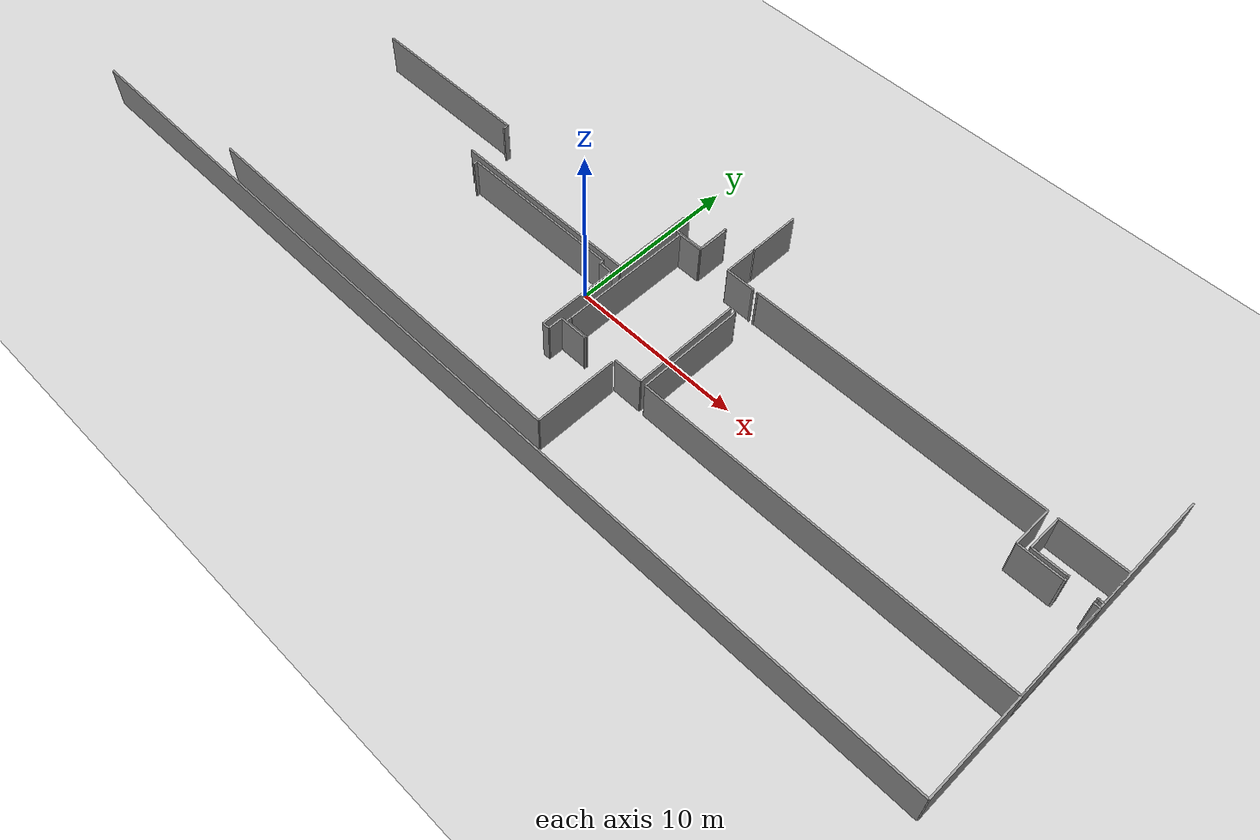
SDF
<sdf version="1.6">
 <world name="default">
  <model name="ground_plane">
   <static>1</static>
   <link name="link">
    <collision name="collision">
     <geometry><plane><normal>0 0 1</normal><size>100 100</size></plane></geometry>
     <surface><friction><ode><mu>100</mu><mu2>50</mu2></ode></friction></surface>
    </collision>
    <visual name="visual">
     <cast_shadows>0</cast_shadows>
     <geometry><plane><normal>0 0 1</normal><size>100 100</size></plane></geometry>
     <material>
      <script><uri>file://media/materials/scripts/gazebo.material</uri><name>Gazebo/Grey</name></script>
     </material>
    </visual>
   </link>
  </model>
  <model name="0510030942_A_40_1_101">
   <static>1</static>
   <link name="Wall_40">
    <collision name="Wall_40_Collision">
     <geometry><box><size>3.01192110213 0.1 2.5</size></box></geometry>
     <pose>1.50596055107 0 1.25 0 0 0</pose>
    </collision>
    <visual name="Wall_40_Visual">
     <pose>1.50596055107 0 1.25 0 0 0</pose>
     <geometry><box><size>3.01192110213 0.1 2.5</size></box></geometry>
     <material>
      <script><uri>file://media/materials/scripts/gazebo.material</uri><name>Gazebo/Grey</name></script>
      <ambient>1 1 1 1</ambient>
     </material>
    </visual>
    <pose>33.9616694627 -0.0 0 0 0 -1.57079632679</pose>
   </link>
   <link name="Wall_41">
    <collision name="Wall_41_Collision">
     <geometry><box><size>1.88500838798 0.1 2.5</size></box></geometry>
     <pose>0.942504193991 0 1.25 0 0 0</pose>
    </collision>
    <visual name="Wall_41_Visual">
     <pose>0.942504193991 0 1.25 0 0 0</pose>
     <geometry><box><size>1.88500838798 0.1 2.5</size></box></geometry>
     <material>
      <script><uri>file://media/materials/scripts/gazebo.material</uri><name>Gazebo/Grey</name></script>
      <ambient>1 1 1 1</ambient>
     </material>
    </visual>
    <pose>32.0152762951 -3.01192110213 0 0 0 -1.57079632679</pose>
   </link>
   <link name="Wall_42">
    <collision name="Wall_42_Collision">
     <geometry><box><size>1.67187738295 0.1 2.5</size></box></geometry>
     <pose>0.835938691475 0 1.25 0 0 0</pose>
    </collision>
    <visual name="Wall_42_Visual">
     <pose>0.835938691475 0 1.25 0 0 0</pose>
     <geometry><box><size>1.67187738295 0.1 2.5</size></box></geometry>
     <material>
      <script><uri>file://media/materials/scripts/gazebo.material</uri><name>Gazebo/Grey</name></script>
      <ambient>1 1 1 1</ambient>
     </material>
    </visual>
    <pose>32.0152762951 -4.89692949011 0 0 0 3.14159265359</pose>
   </link>
   <link name="Wall_43">
    <collision name="Wall_43_Collision">
     <geometry><box><size>0.869681256672 0.1 2.5</size></box></geometry>
     <pose>0.434840628336 0 1.25 0 0 0</pose>
    </collision>
    <visual name="Wall_43_Visual">
     <pose>0.434840628336 0 1.25 0 0 0</pose>
     <geometry><box><size>0.869681256672 0.1 2.5</size></box></geometry>
     <material>
      <script><uri>file://media/materials/scripts/gazebo.material</uri><name>Gazebo/Grey</name></script>
      <ambient>1 1 1 1</ambient>
     </material>
    </visual>
    <pose>30.3433989121 -4.89692949011 0 0 0 1.57079632679</pose>
   </link>
   <link name="Wall_44">
    <collision name="Wall_44_Collision">
     <geometry><box><size>0.362716689543 0.1 2.5</size></box></geometry>
     <pose>0.181358344771 0 1.25 0 0 0</pose>
    </collision>
    <visual name="Wall_44_Visual">
     <pose>0.181358344771 0 1.25 0 0 0</pose>
     <geometry><box><size>0.362716689543 0.1 2.5</size></box></geometry>
     <material>
      <script><uri>file://media/materials/scripts/gazebo.material</uri><name>Gazebo/Grey</name></script>
      <ambient>1 1 1 1</ambient>
     </material>
    </visual>
    <pose>30.3433989121 -4.02724823344 0 0 0 3.14159265359</pose>
   </link>
   <link name="Wall_45">
    <collision name="Wall_45_Collision">
     <geometry><box><size>4.62927660007 0.1 2.5</size></box></geometry>
     <pose>2.31463830004 0 1.25 0 0 0</pose>
    </collision>
    <visual name="Wall_45_Visual">
     <pose>2.31463830004 0 1.25 0 0 0</pose>
     <geometry><box><size>4.62927660007 0.1 2.5</size></box></geometry>
     <material>
      <script><uri>file://media/materials/scripts/gazebo.material</uri><name>Gazebo/Grey</name></script>
      <ambient>1 1 1 1</ambient>
     </material>
    </visual>
    <pose>29.9806822226 -4.02724823344 0 0 0 -1.57079632679</pose>
   </link>
   <link name="Wall_46">
    <collision name="Wall_46_Collision">
     <geometry><box><size>11.2853947435 0.1 2.5</size></box></geometry>
     <pose>5.64269737177 0 1.25 0 0 0</pose>
    </collision>
    <visual name="Wall_46_Visual">
     <pose>5.64269737177 0 1.25 0 0 0</pose>
     <geometry><box><size>11.2853947435 0.1 2.5</size></box></geometry>
     <material>
      <script><uri>file://media/materials/scripts/gazebo.material</uri><name>Gazebo/Grey</name></script>
      <ambient>1 1 1 1</ambient>
     </material>
    </visual>
    <pose>29.9806822226 -8.65652483351 0 0 0 3.14159265359</pose>
   </link>
   <link name="Wall_48">
    <collision name="Wall_48_Collision">
     <geometry><box><size>0.315947333638 0.1 2.5</size></box></geometry>
     <pose>0.157973666819 0 1.25 0 0 0</pose>
    </collision>
    <visual name="Wall_48_Visual">
     <pose>0.157973666819 0 1.25 0 0 0</pose>
     <geometry><box><size>0.315947333638 0.1 2.5</size></box></geometry>
     <material>
      <script><uri>file://media/materials/scripts/gazebo.material</uri><name>Gazebo/Grey</name></script>
      <ambient>1 1 1 1</ambient>
     </material>
    </visual>
    <pose>18.695287479 -6.34588988867 0 0 0 1.57079632679</pose>
   </link>
   <link name="Wall_49">
    <collision name="Wall_49_Collision">
     <geometry><box><size>9.84914789924 0.1 2.5</size></box></geometry>
     <pose>4.92457394962 0 1.25 0 0 0</pose>
    </collision>
    <visual name="Wall_49_Visual">
     <pose>4.92457394962 0 1.25 0 0 0</pose>
     <geometry><box><size>9.84914789924 0.1 2.5</size></box></geometry>
     <material>
      <script><uri>file://media/materials/scripts/gazebo.material</uri><name>Gazebo/Grey</name></script>
      <ambient>1 1 1 1</ambient>
     </material>
    </visual>
    <pose>18.695287479 -6.02994255503 0 0 0 3.14063777821</pose>
   </link>
   <link name="Wall_64">
    <collision name="Wall_64_Collision">
     <geometry><box><size>0.249351837731 0.1 2.5</size></box></geometry>
     <pose>0.124675918865 0 1.25 0 0 0</pose>
    </collision>
    <visual name="Wall_64_Visual">
     <pose>0.124675918865 0 1.25 0 0 0</pose>
     <geometry><box><size>0.249351837731 0.1 2.5</size></box></geometry>
     <material>
      <script><uri>file://media/materials/scripts/gazebo.material</uri><name>Gazebo/Grey</name></script>
      <ambient>1 1 1 1</ambient>
     </material>
    </visual>
    <pose>19.5475573179 -9.25194448681 0 0 0 1.57079632679</pose>
   </link>
   <link name="Wall_65">
    <collision name="Wall_65_Collision">
     <geometry><box><size>9.60195211225 0.1 2.5</size></box></geometry>
     <pose>4.80097605612 0 1.25 0 0 0</pose>
    </collision>
    <visual name="Wall_65_Visual">
     <pose>4.80097605612 0 1.25 0 0 0</pose>
     <geometry><box><size>9.60195211225 0.1 2.5</size></box></geometry>
     <material>
      <script><uri>file://media/materials/scripts/gazebo.material</uri><name>Gazebo/Grey</name></script>
      <ambient>1 1 1 1</ambient>
     </material>
    </visual>
    <pose>19.5475573179 -9.00259264908 0 0 0 0.0</pose>
   </link>
   <link name="Wall_66">
    <collision name="Wall_66_Collision">
     <geometry><box><size>0.233211326318 0.1 2.5</size></box></geometry>
     <pose>0.116605663159 0 1.25 0 0 0</pose>
    </collision>
    <visual name="Wall_66_Visual">
     <pose>0.116605663159 0 1.25 0 0 0</pose>
     <geometry><box><size>0.233211326318 0.1 2.5</size></box></geometry>
     <material>
      <script><uri>file://media/materials/scripts/gazebo.material</uri><name>Gazebo/Grey</name></script>
      <ambient>1 1 1 1</ambient>
     </material>
    </visual>
    <pose>29.1495094301 -9.00259264908 0 0 0 -1.57079632679</pose>
   </link>
   <link name="Wall_67">
    <collision name="Wall_67_Collision">
     <geometry><box><size>0.794824869097 0.1 2.5</size></box></geometry>
     <pose>0.397412434548 0 1.25 0 0 0</pose>
    </collision>
    <visual name="Wall_67_Visual">
     <pose>0.397412434548 0 1.25 0 0 0</pose>
     <geometry><box><size>0.794824869097 0.1 2.5</size></box></geometry>
     <material>
      <script><uri>file://media/materials/scripts/gazebo.material</uri><name>Gazebo/Grey</name></script>
      <ambient>1 1 1 1</ambient>
     </material>
    </visual>
    <pose>29.1495094301 -9.2358039754 0 0 0 0.0</pose>
   </link>
   <link name="Wall_68">
    <collision name="Wall_68_Collision">
     <geometry><box><size>4.65316964059 0.1 2.5</size></box></geometry>
     <pose>2.32658482029 0 1.25 0 0 0</pose>
    </collision>
    <visual name="Wall_68_Visual">
     <pose>2.32658482029 0 1.25 0 0 0</pose>
     <geometry><box><size>4.65316964059 0.1 2.5</size></box></geometry>
     <material>
      <script><uri>file://media/materials/scripts/gazebo.material</uri><name>Gazebo/Grey</name></script>
      <ambient>1 1 1 1</ambient>
     </material>
    </visual>
    <pose>29.9443342992 -9.2358039754 0 0 0 -1.57079632679</pose>
   </link>
   <link name="Wall_69">
    <collision name="Wall_69_Collision">
     <geometry><box><size>0.404656601088 0.1 2.5</size></box></geometry>
     <pose>0.202328300544 0 1.25 0 0 0</pose>
    </collision>
    <visual name="Wall_69_Visual">
     <pose>0.202328300544 0 1.25 0 0 0</pose>
     <geometry><box><size>0.404656601088 0.1 2.5</size></box></geometry>
     <material>
      <script><uri>file://media/materials/scripts/gazebo.material</uri><name>Gazebo/Grey</name></script>
      <ambient>1 1 1 1</ambient>
     </material>
    </visual>
    <pose>29.9443342992 -13.888973616 0 0 0 0.0</pose>
   </link>
   <link name="Wall_70">
    <collision name="Wall_70_Collision">
     <geometry><box><size>0.861166183722 0.1 2.5</size></box></geometry>
     <pose>0.430583091861 0 1.25 0 0 0</pose>
    </collision>
    <visual name="Wall_70_Visual">
     <pose>0.430583091861 0 1.25 0 0 0</pose>
     <geometry><box><size>0.861166183722 0.1 2.5</size></box></geometry>
     <material>
      <script><uri>file://media/materials/scripts/gazebo.material</uri><name>Gazebo/Grey</name></script>
      <ambient>1 1 1 1</ambient>
     </material>
    </visual>
    <pose>30.3489909003 -13.888973616 0 0 0 1.57079632679</pose>
   </link>
   <link name="Wall_71">
    <collision name="Wall_71_Collision">
     <geometry><box><size>1.63502109705 0.1 2.5</size></box></geometry>
     <pose>0.817510548523 0 1.25 0 0 0</pose>
    </collision>
    <visual name="Wall_71_Visual">
     <pose>0.817510548523 0 1.25 0 0 0</pose>
     <geometry><box><size>1.63502109705 0.1 2.5</size></box></geometry>
     <material>
      <script><uri>file://media/materials/scripts/gazebo.material</uri><name>Gazebo/Grey</name></script>
      <ambient>1 1 1 1</ambient>
     </material>
    </visual>
    <pose>30.3489909003 -13.0278074323 0 0 0 0.0</pose>
   </link>
   <link name="Wall_72">
    <collision name="Wall_72_Collision">
     <geometry><box><size>0.0753647501398 0.1 2.5</size></box></geometry>
     <pose>0.0376823750699 0 1.25 0 0 0</pose>
    </collision>
    <visual name="Wall_72_Visual">
     <pose>0.0376823750699 0 1.25 0 0 0</pose>
     <geometry><box><size>0.0753647501398 0.1 2.5</size></box></geometry>
     <material>
      <script><uri>file://media/materials/scripts/gazebo.material</uri><name>Gazebo/Grey</name></script>
      <ambient>1 1 1 1</ambient>
     </material>
    </visual>
    <pose>31.9840119974 -13.0278074323 0 0 0 -1.57079632679</pose>
   </link>
   <link name="Wall_73">
    <collision name="Wall_73_Collision">
     <geometry><box><size>4.81114330741 0.1 2.5</size></box></geometry>
     <pose>2.4055716537 0 1.25 0 0 0</pose>
    </collision>
    <visual name="Wall_73_Visual">
     <pose>2.4055716537 0 1.25 0 0 0</pose>
     <geometry><box><size>4.81114330741 0.1 2.5</size></box></geometry>
     <material>
      <script><uri>file://media/materials/scripts/gazebo.material</uri><name>Gazebo/Grey</name></script>
      <ambient>1 1 1 1</ambient>
     </material>
    </visual>
    <pose>33.950231305 -13.1031721824 0 0 0 -1.57079632679</pose>
   </link>
   <link name="Wall_74">
    <collision name="Wall_74_Collision">
     <geometry><box><size>24.3796718544 0.1 2.5</size></box></geometry>
     <pose>12.1898359272 0 1.25 0 0 0</pose>
    </collision>
    <visual name="Wall_74_Visual">
     <pose>12.1898359272 0 1.25 0 0 0</pose>
     <geometry><box><size>24.3796718544 0.1 2.5</size></box></geometry>
     <material>
      <script><uri>file://media/materials/scripts/gazebo.material</uri><name>Gazebo/Grey</name></script>
      <ambient>1 1 1 1</ambient>
     </material>
    </visual>
    <pose>33.950231305 -17.9143154898 0 0 0 3.14126944908</pose>
   </link>
   <link name="Wall_75">
    <collision name="Wall_75_Collision">
     <geometry><box><size>7.71224137055 0.1 2.5</size></box></geometry>
     <pose>3.85612068527 0 1.25 0 0 0</pose>
    </collision>
    <visual name="Wall_75_Visual">
     <pose>3.85612068527 0 1.25 0 0 0</pose>
     <geometry><box><size>7.71224137055 0.1 2.5</size></box></geometry>
     <material>
      <script><uri>file://media/materials/scripts/gazebo.material</uri><name>Gazebo/Grey</name></script>
      <ambient>1 1 1 1</ambient>
     </material>
    </visual>
    <pose>30.6444766407 -12.6711910935 0 0 0 1.57079632679</pose>
   </link>
   <link name="Wall_76">
    <collision name="Wall_76_Collision">
     <geometry><box><size>1.37906054598 0.1 2.5</size></box></geometry>
     <pose>0.689530272991 0 1.25 0 0 0</pose>
    </collision>
    <visual name="Wall_76_Visual">
     <pose>0.689530272991 0 1.25 0 0 0</pose>
     <geometry><box><size>1.37906054598 0.1 2.5</size></box></geometry>
     <material>
      <script><uri>file://media/materials/scripts/gazebo.material</uri><name>Gazebo/Grey</name></script>
      <ambient>1 1 1 1</ambient>
     </material>
    </visual>
    <pose>30.6444766407 -4.95894972294 0 0 0 0.0</pose>
   </link>
   <link name="Wall_77">
    <collision name="Wall_77_Collision">
     <geometry><box><size>0.0359666514158 0.1 2.5</size></box></geometry>
     <pose>0.0179833257079 0 1.25 0 0 0</pose>
    </collision>
    <visual name="Wall_77_Visual">
     <pose>0.0179833257079 0 1.25 0 0 0</pose>
     <geometry><box><size>0.0359666514158 0.1 2.5</size></box></geometry>
     <material>
      <script><uri>file://media/materials/scripts/gazebo.material</uri><name>Gazebo/Grey</name></script>
      <ambient>1 1 1 1</ambient>
     </material>
    </visual>
    <pose>32.0235371867 -4.95894972294 0 0 0 0.0</pose>
   </link>
   <link name="Wall_78">
    <collision name="Wall_78_Collision">
     <geometry><box><size>1.83747648823 0.1 2.5</size></box></geometry>
     <pose>0.918738244116 0 1.25 0 0 0</pose>
    </collision>
    <visual name="Wall_78_Visual">
     <pose>0.918738244116 0 1.25 0 0 0</pose>
     <geometry><box><size>1.83747648823 0.1 2.5</size></box></geometry>
     <material>
      <script><uri>file://media/materials/scripts/gazebo.material</uri><name>Gazebo/Grey</name></script>
      <ambient>1 1 1 1</ambient>
     </material>
    </visual>
    <pose>32.0595038381 -4.95894972294 0 0 0 1.57079632679</pose>
   </link>
   <link name="Wall_79">
    <collision name="Wall_79_Collision">
     <geometry><box><size>1.84700828631 0.1 2.5</size></box></geometry>
     <pose>0.923504143155 0 1.25 0 0 0</pose>
    </collision>
    <visual name="Wall_79_Visual">
     <pose>0.923504143155 0 1.25 0 0 0</pose>
     <geometry><box><size>1.84700828631 0.1 2.5</size></box></geometry>
     <material>
      <script><uri>file://media/materials/scripts/gazebo.material</uri><name>Gazebo/Grey</name></script>
      <ambient>1 1 1 1</ambient>
     </material>
    </visual>
    <pose>33.9576025621 -3.12147323471 0 0 0 -1.57079632679</pose>
   </link>
   <link name="Wall_80">
    <collision name="Wall_80_Collision">
     <geometry><box><size>1.72233236744 0.1 2.5</size></box></geometry>
     <pose>0.861166183722 0 1.25 0 0 0</pose>
    </collision>
    <visual name="Wall_80_Visual">
     <pose>0.861166183722 0 1.25 0 0 0</pose>
     <geometry><box><size>1.72233236744 0.1 2.5</size></box></geometry>
     <material>
      <script><uri>file://media/materials/scripts/gazebo.material</uri><name>Gazebo/Grey</name></script>
      <ambient>1 1 1 1</ambient>
     </material>
    </visual>
    <pose>33.9576025621 -4.96848152102 0 0 0 0.0</pose>
   </link>
   <link name="Wall_81">
    <collision name="Wall_81_Collision">
     <geometry><box><size>0.0831172792436 0.1 2.5</size></box></geometry>
     <pose>0.0415586396218 0 1.25 0 0 0</pose>
    </collision>
    <visual name="Wall_81_Visual">
     <pose>0.0415586396218 0 1.25 0 0 0</pose>
     <geometry><box><size>0.0831172792436 0.1 2.5</size></box></geometry>
     <material>
      <script><uri>file://media/materials/scripts/gazebo.material</uri><name>Gazebo/Grey</name></script>
      <ambient>1 1 1 1</ambient>
     </material>
    </visual>
    <pose>35.6799349296 -4.96848152102 0 0 0 -1.57079632679</pose>
   </link>
   <link name="Wall_82">
    <collision name="Wall_82_Collision">
     <geometry><box><size>6.30496670225 0.1 2.5</size></box></geometry>
     <pose>3.15248335113 0 1.25 0 0 0</pose>
    </collision>
    <visual name="Wall_82_Visual">
     <pose>3.15248335113 0 1.25 0 0 0</pose>
     <geometry><box><size>6.30496670225 0.1 2.5</size></box></geometry>
     <material>
      <script><uri>file://media/materials/scripts/gazebo.material</uri><name>Gazebo/Grey</name></script>
      <ambient>1 1 1 1</ambient>
     </material>
    </visual>
    <pose>35.6799349296 -6.63031874333 0 0 0 -1.57079632679</pose>
   </link>
   <link name="Wall_83">
    <collision name="Wall_83_Collision">
     <geometry><box><size>1.7045396777 0.1 2.5</size></box></geometry>
     <pose>0.852269838849 0 1.25 0 0 0</pose>
    </collision>
    <visual name="Wall_83_Visual">
     <pose>0.852269838849 0 1.25 0 0 0</pose>
     <geometry><box><size>1.7045396777 0.1 2.5</size></box></geometry>
     <material>
      <script><uri>file://media/materials/scripts/gazebo.material</uri><name>Gazebo/Grey</name></script>
      <ambient>1 1 1 1</ambient>
     </material>
    </visual>
    <pose>35.6799349296 -12.9352854456 0 0 0 3.14159265359</pose>
   </link>
   <link name="Wall_84">
    <collision name="Wall_84_Collision">
     <geometry><box><size>0.0329164760307 0.1 2.5</size></box></geometry>
     <pose>0.0164582380154 0 1.25 0 0 0</pose>
    </collision>
    <visual name="Wall_84_Visual">
     <pose>0.0164582380154 0 1.25 0 0 0</pose>
     <geometry><box><size>0.0329164760307 0.1 2.5</size></box></geometry>
     <material>
      <script><uri>file://media/materials/scripts/gazebo.material</uri><name>Gazebo/Grey</name></script>
      <ambient>1 1 1 1</ambient>
     </material>
    </visual>
    <pose>32.0160388389 -12.9352854456 0 0 0 -1.57079632679</pose>
   </link>
   <link name="Wall_85">
    <collision name="Wall_85_Collision">
     <geometry><box><size>1.39227797265 0.1 2.5</size></box></geometry>
     <pose>0.696138986325 0 1.25 0 0 0</pose>
    </collision>
    <visual name="Wall_85_Visual">
     <pose>0.696138986325 0 1.25 0 0 0</pose>
     <geometry><box><size>1.39227797265 0.1 2.5</size></box></geometry>
     <material>
      <script><uri>file://media/materials/scripts/gazebo.material</uri><name>Gazebo/Grey</name></script>
      <ambient>1 1 1 1</ambient>
     </material>
    </visual>
    <pose>32.0160388389 -12.9682019216 0 0 0 3.14159265359</pose>
   </link>
   <link name="Wall_86">
    <collision name="Wall_86_Collision">
     <geometry><box><size>0.29773238879 0.1 2.5</size></box></geometry>
     <pose>0.148866194395 0 1.25 0 0 0</pose>
    </collision>
    <visual name="Wall_86_Visual">
     <pose>0.148866194395 0 1.25 0 0 0</pose>
     <geometry><box><size>0.29773238879 0.1 2.5</size></box></geometry>
     <material>
      <script><uri>file://media/materials/scripts/gazebo.material</uri><name>Gazebo/Grey</name></script>
      <ambient>1 1 1 1</ambient>
     </material>
    </visual>
    <pose>30.6237608662 -12.9682019216 0 0 0 1.50116155897</pose>
   </link>
   <link name="Wall_87">
    <collision name="Wall_87_Collision">
     <geometry><box><size>6.26378933455 0.1 2.5</size></box></geometry>
     <pose>3.13189466728 0 1.25 0 0 0</pose>
    </collision>
    <visual name="Wall_87_Visual">
     <pose>3.13189466728 0 1.25 0 0 0</pose>
     <geometry><box><size>6.26378933455 0.1 2.5</size></box></geometry>
     <material>
      <script><uri>file://media/materials/scripts/gazebo.material</uri><name>Gazebo/Grey</name></script>
      <ambient>1 1 1 1</ambient>
     </material>
    </visual>
    <pose>36.0110060495 -12.961339027 0 0 0 1.57079632679</pose>
   </link>
   <link name="Wall_88">
    <collision name="Wall_88_Collision">
     <geometry><box><size>0.0419399115449 0.1 2.5</size></box></geometry>
     <pose>0.0209699557725 0 1.25 0 0 0</pose>
    </collision>
    <visual name="Wall_88_Visual">
     <pose>0.0209699557725 0 1.25 0 0 0</pose>
     <geometry><box><size>0.0419399115449 0.1 2.5</size></box></geometry>
     <material>
      <script><uri>file://media/materials/scripts/gazebo.material</uri><name>Gazebo/Grey</name></script>
      <ambient>1 1 1 1</ambient>
     </material>
    </visual>
    <pose>36.0110060495 -6.69754969244 0 0 0 3.14159265359</pose>
   </link>
   <link name="Wall_89">
    <collision name="Wall_89_Collision">
     <geometry><box><size>0.0934116211682 0.1 2.5</size></box></geometry>
     <pose>0.0467058105841 0 1.25 0 0 0</pose>
    </collision>
    <visual name="Wall_89_Visual">
     <pose>0.0467058105841 0 1.25 0 0 0</pose>
     <geometry><box><size>0.0934116211682 0.1 2.5</size></box></geometry>
     <material>
      <script><uri>file://media/materials/scripts/gazebo.material</uri><name>Gazebo/Grey</name></script>
      <ambient>1 1 1 1</ambient>
     </material>
    </visual>
    <pose>35.969066138 -6.69754969244 0 0 0 1.57079632679</pose>
   </link>
   <link name="Wall_90">
    <collision name="Wall_90_Collision">
     <geometry><box><size>0.0712978496264 0.1 2.5</size></box></geometry>
     <pose>0.0356489248132 0 1.25 0 0 0</pose>
    </collision>
    <visual name="Wall_90_Visual">
     <pose>0.0356489248132 0 1.25 0 0 0</pose>
     <geometry><box><size>0.0712978496264 0.1 2.5</size></box></geometry>
     <material>
      <script><uri>file://media/materials/scripts/gazebo.material</uri><name>Gazebo/Grey</name></script>
      <ambient>1 1 1 1</ambient>
     </material>
    </visual>
    <pose>35.969066138 -5.0418128209 0 0 0 1.57079632679</pose>
   </link>
   <link name="Wall_91">
    <collision name="Wall_91_Collision">
     <geometry><box><size>17.2136647857 0.1 2.5</size></box></geometry>
     <pose>8.60683239286 0 1.25 0 0 0</pose>
    </collision>
    <visual name="Wall_91_Visual">
     <pose>8.60683239286 0 1.25 0 0 0</pose>
     <geometry><box><size>17.2136647857 0.1 2.5</size></box></geometry>
     <material>
      <script><uri>file://media/materials/scripts/gazebo.material</uri><name>Gazebo/Grey</name></script>
      <ambient>1 1 1 1</ambient>
     </material>
    </visual>
    <pose>35.969066138 -4.97051497128 0 0 0 0.0</pose>
   </link>
   <link name="Wall_92">
    <collision name="Wall_92_Collision">
     <geometry><box><size>2.329698541 0.1 2.5</size></box></geometry>
     <pose>1.1648492705 0 1.25 0 0 0</pose>
    </collision>
    <visual name="Wall_92_Visual">
     <pose>1.1648492705 0 1.25 0 0 0</pose>
     <geometry><box><size>2.329698541 0.1 2.5</size></box></geometry>
     <material>
      <script><uri>file://media/materials/scripts/gazebo.material</uri><name>Gazebo/Grey</name></script>
      <ambient>1 1 1 1</ambient>
     </material>
    </visual>
    <pose>53.1827309237 -4.97051497128 0 0 0 -1.57079632679</pose>
   </link>
   <link name="Wall_93">
    <collision name="Wall_93_Collision">
     <geometry><box><size>2.46860861166 0.1 2.5</size></box></geometry>
     <pose>1.23430430583 0 1.25 0 0 0</pose>
    </collision>
    <visual name="Wall_93_Visual">
     <pose>1.23430430583 0 1.25 0 0 0</pose>
     <geometry><box><size>2.46860861166 0.1 2.5</size></box></geometry>
     <material>
      <script><uri>file://media/materials/scripts/gazebo.material</uri><name>Gazebo/Grey</name></script>
      <ambient>1 1 1 1</ambient>
     </material>
    </visual>
    <pose>53.1827309237 -7.30021351228 0 0 0 0.0</pose>
   </link>
   <link name="Wall_94">
    <collision name="Wall_94_Collision">
     <geometry><box><size>0.0255452188501 0.1 2.5</size></box></geometry>
     <pose>0.012772609425 0 1.25 0 0 0</pose>
    </collision>
    <visual name="Wall_94_Visual">
     <pose>0.012772609425 0 1.25 0 0 0</pose>
     <geometry><box><size>0.0255452188501 0.1 2.5</size></box></geometry>
     <material>
      <script><uri>file://media/materials/scripts/gazebo.material</uri><name>Gazebo/Grey</name></script>
      <ambient>1 1 1 1</ambient>
     </material>
    </visual>
    <pose>55.6513395354 -7.30021351228 0 0 0 1.57079632679</pose>
   </link>
   <link name="Wall_95">
    <collision name="Wall_95_Collision">
     <geometry><box><size>0.0997661532205 0.1 2.5</size></box></geometry>
     <pose>0.0498830766102 0 1.25 0 0 0</pose>
    </collision>
    <visual name="Wall_95_Visual">
     <pose>0.0498830766102 0 1.25 0 0 0</pose>
     <geometry><box><size>0.0997661532205 0.1 2.5</size></box></geometry>
     <material>
      <script><uri>file://media/materials/scripts/gazebo.material</uri><name>Gazebo/Grey</name></script>
      <ambient>1 1 1 1</ambient>
     </material>
    </visual>
    <pose>55.6513395354 -7.27466829343 0 0 0 0.0</pose>
   </link>
   <link name="Wall_96">
    <collision name="Wall_96_Collision">
     <geometry><box><size>0.0495653500076 0.1 2.5</size></box></geometry>
     <pose>0.0247826750038 0 1.25 0 0 0</pose>
    </collision>
    <visual name="Wall_96_Visual">
     <pose>0.0247826750038 0 1.25 0 0 0</pose>
     <geometry><box><size>0.0495653500076 0.1 2.5</size></box></geometry>
     <material>
      <script><uri>file://media/materials/scripts/gazebo.material</uri><name>Gazebo/Grey</name></script>
      <ambient>1 1 1 1</ambient>
     </material>
    </visual>
    <pose>57.1334705912 -7.27466829343 0 0 0 0.0</pose>
   </link>
   <link name="Wall_97">
    <collision name="Wall_97_Collision">
     <geometry><box><size>0.0378730110315 0.1 2.5</size></box></geometry>
     <pose>0.0189365055157 0 1.25 0 0 0</pose>
    </collision>
    <visual name="Wall_97_Visual">
     <pose>0.0189365055157 0 1.25 0 0 0</pose>
     <geometry><box><size>0.0378730110315 0.1 2.5</size></box></geometry>
     <material>
      <script><uri>file://media/materials/scripts/gazebo.material</uri><name>Gazebo/Grey</name></script>
      <ambient>1 1 1 1</ambient>
     </material>
    </visual>
    <pose>57.1830359412 -7.27466829343 0 0 0 -1.57079632679</pose>
   </link>
   <link name="Wall_98">
    <collision name="Wall_98_Collision">
     <geometry><box><size>0.309846982868 0.1 2.5</size></box></geometry>
     <pose>0.154923491434 0 1.25 0 0 0</pose>
    </collision>
    <visual name="Wall_98_Visual">
     <pose>0.154923491434 0 1.25 0 0 0</pose>
     <geometry><box><size>0.309846982868 0.1 2.5</size></box></geometry>
     <material>
      <script><uri>file://media/materials/scripts/gazebo.material</uri><name>Gazebo/Grey</name></script>
      <ambient>1 1 1 1</ambient>
     </material>
    </visual>
    <pose>57.1830359412 -7.31254130446 0 0 0 0.0</pose>
   </link>
   <link name="Wall_99">
    <collision name="Wall_99_Collision">
     <geometry><box><size>5.64079101215 0.1 2.5</size></box></geometry>
     <pose>2.82039550607 0 1.25 0 0 0</pose>
    </collision>
    <visual name="Wall_99_Visual">
     <pose>2.82039550607 0 1.25 0 0 0</pose>
     <geometry><box><size>5.64079101215 0.1 2.5</size></box></geometry>
     <material>
      <script><uri>file://media/materials/scripts/gazebo.material</uri><name>Gazebo/Grey</name></script>
      <ambient>1 1 1 1</ambient>
     </material>
    </visual>
    <pose>57.4928829241 -7.31254130446 0 0 0 -1.57079632679</pose>
   </link>
   <link name="Wall_100">
    <collision name="Wall_100_Collision">
     <geometry><box><size>21.4818783667 0.1 2.5</size></box></geometry>
     <pose>10.7409391834 0 1.25 0 0 0</pose>
    </collision>
    <visual name="Wall_100_Visual">
     <pose>10.7409391834 0 1.25 0 0 0</pose>
     <geometry><box><size>21.4818783667 0.1 2.5</size></box></geometry>
     <material>
      <script><uri>file://media/materials/scripts/gazebo.material</uri><name>Gazebo/Grey</name></script>
      <ambient>1 1 1 1</ambient>
     </material>
    </visual>
    <pose>57.4928829241 -12.9533323166 0 0 0 -3.14121993429</pose>
   </link>
   <link name="Wall_101">
    <collision name="Wall_101_Collision">
     <geometry><box><size>2.0451425957 0.1 2.5</size></box></geometry>
     <pose>1.02257129785 0 1.25 0 0 0</pose>
    </collision>
    <visual name="Wall_101_Visual">
     <pose>1.02257129785 0 1.25 0 0 0</pose>
     <geometry><box><size>2.0451425957 0.1 2.5</size></box></geometry>
     <material>
      <script><uri>file://media/materials/scripts/gazebo.material</uri><name>Gazebo/Grey</name></script>
      <ambient>1 1 1 1</ambient>
     </material>
    </visual>
    <pose>53.7447257384 -7.02124955518 0 0 0 1.57079632679</pose>
   </link>
   <link name="Wall_102">
    <collision name="Wall_102_Collision">
     <geometry><box><size>3.74154847237 0.1 2.5</size></box></geometry>
     <pose>1.87077423619 0 1.25 0 0 0</pose>
    </collision>
    <visual name="Wall_102_Visual">
     <pose>1.87077423619 0 1.25 0 0 0</pose>
     <geometry><box><size>3.74154847237 0.1 2.5</size></box></geometry>
     <material>
      <script><uri>file://media/materials/scripts/gazebo.material</uri><name>Gazebo/Grey</name></script>
      <ambient>1 1 1 1</ambient>
     </material>
    </visual>
    <pose>53.7447257384 -4.97610695948 0 0 0 0.0</pose>
   </link>
   <link name="Wall_103">
    <collision name="Wall_103_Collision">
     <geometry><box><size>2.05772456916 0.1 2.5</size></box></geometry>
     <pose>1.02886228458 0 1.25 0 0 0</pose>
    </collision>
    <visual name="Wall_103_Visual">
     <pose>1.02886228458 0 1.25 0 0 0</pose>
     <geometry><box><size>2.05772456916 0.1 2.5</size></box></geometry>
     <material>
      <script><uri>file://media/materials/scripts/gazebo.material</uri><name>Gazebo/Grey</name></script>
      <ambient>1 1 1 1</ambient>
     </material>
    </visual>
    <pose>57.4862742108 -4.97610695948 0 0 0 -1.57079632679</pose>
   </link>
   <link name="Wall_104">
    <collision name="Wall_104_Collision">
     <geometry><box><size>0.235626048498 0.1 2.5</size></box></geometry>
     <pose>0.117813024249 0 1.25 0 0 0</pose>
    </collision>
    <visual name="Wall_104_Visual">
     <pose>0.117813024249 0 1.25 0 0 0</pose>
     <geometry><box><size>0.235626048498 0.1 2.5</size></box></geometry>
     <material>
      <script><uri>file://media/materials/scripts/gazebo.material</uri><name>Gazebo/Grey</name></script>
      <ambient>1 1 1 1</ambient>
     </material>
    </visual>
    <pose>57.4862742108 -7.03383152865 0 0 0 3.14159265359</pose>
   </link>
   <link name="Wall_105">
    <collision name="Wall_105_Collision">
     <geometry><box><size>0.0283412129531 0.1 2.5</size></box></geometry>
     <pose>0.0141706064765 0 1.25 0 0 0</pose>
    </collision>
    <visual name="Wall_105_Visual">
     <pose>0.0141706064765 0 1.25 0 0 0</pose>
     <geometry><box><size>0.0283412129531 0.1 2.5</size></box></geometry>
     <material>
      <script><uri>file://media/materials/scripts/gazebo.material</uri><name>Gazebo/Grey</name></script>
      <ambient>1 1 1 1</ambient>
     </material>
    </visual>
    <pose>57.2506481623 -7.03383152865 0 0 0 1.57079632679</pose>
   </link>
   <link name="Wall_106">
    <collision name="Wall_106_Collision">
     <geometry><box><size>0.119465202582 0.1 2.5</size></box></geometry>
     <pose>0.0597326012912 0 1.25 0 0 0</pose>
    </collision>
    <visual name="Wall_106_Visual">
     <pose>0.0597326012912 0 1.25 0 0 0</pose>
     <geometry><box><size>0.119465202582 0.1 2.5</size></box></geometry>
     <material>
      <script><uri>file://media/materials/scripts/gazebo.material</uri><name>Gazebo/Grey</name></script>
      <ambient>1 1 1 1</ambient>
     </material>
    </visual>
    <pose>57.2506481623 -7.00549031569 0 0 0 3.14159265359</pose>
   </link>
   <link name="Wall_107">
    <collision name="Wall_107_Collision">
     <geometry><box><size>0.113619033094 0.1 2.5</size></box></geometry>
     <pose>0.0568095165472 0 1.25 0 0 0</pose>
    </collision>
    <visual name="Wall_107_Visual">
     <pose>0.0568095165472 0 1.25 0 0 0</pose>
     <geometry><box><size>0.113619033094 0.1 2.5</size></box></geometry>
     <material>
      <script><uri>file://media/materials/scripts/gazebo.material</uri><name>Gazebo/Grey</name></script>
      <ambient>1 1 1 1</ambient>
     </material>
    </visual>
    <pose>55.7350922678 -7.00549031569 0 0 0 3.14159265359</pose>
   </link>
   <link name="Wall_108">
    <collision name="Wall_108_Collision">
     <geometry><box><size>0.0221137715419 0.1 2.5</size></box></geometry>
     <pose>0.0110568857709 0 1.25 0 0 0</pose>
    </collision>
    <visual name="Wall_108_Visual">
     <pose>0.0110568857709 0 1.25 0 0 0</pose>
     <geometry><box><size>0.0221137715419 0.1 2.5</size></box></geometry>
     <material>
      <script><uri>file://media/materials/scripts/gazebo.material</uri><name>Gazebo/Grey</name></script>
      <ambient>1 1 1 1</ambient>
     </material>
    </visual>
    <pose>55.6214732347 -7.00549031569 0 0 0 -1.57079632679</pose>
   </link>
   <link name="Wall_109">
    <collision name="Wall_109_Collision">
     <geometry><box><size>1.87675825428 0.1 2.5</size></box></geometry>
     <pose>0.938379127139 0 1.25 0 0 0</pose>
    </collision>
    <visual name="Wall_109_Visual">
     <pose>0.938379127139 0 1.25 0 0 0</pose>
     <geometry><box><size>1.87675825428 0.1 2.5</size></box></geometry>
     <material>
      <script><uri>file://media/materials/scripts/gazebo.material</uri><name>Gazebo/Grey</name></script>
      <ambient>1 1 1 1</ambient>
     </material>
    </visual>
    <pose>55.6214732347 -7.02760408724 0 0 0 3.13820673845</pose>
   </link>
   <link name="Wall_110">
    <collision name="Wall_110_Collision">
     <geometry><box><size>19.0402114788 0.1 2.5</size></box></geometry>
     <pose>9.52010573941 0 1.25 0 0 0</pose>
    </collision>
    <visual name="Wall_110_Visual">
     <pose>9.52010573941 0 1.25 0 0 0</pose>
     <geometry><box><size>19.0402114788 0.1 2.5</size></box></geometry>
     <material>
      <script><uri>file://media/materials/scripts/gazebo.material</uri><name>Gazebo/Grey</name></script>
      <ambient>1 1 1 1</ambient>
     </material>
    </visual>
    <pose>57.4928829241 -19.0402114788 0 0 0 1.57079632679</pose>
   </link>
   <link name="Wall_111">
    <collision name="Wall_111_Collision">
     <geometry><box><size>57.4928829241 0.1 2.5</size></box></geometry>
     <pose>28.7464414621 0 1.25 0 0 0</pose>
    </collision>
    <visual name="Wall_111_Visual">
     <pose>28.7464414621 0 1.25 0 0 0</pose>
     <geometry><box><size>57.4928829241 0.1 2.5</size></box></geometry>
     <material>
      <script><uri>file://media/materials/scripts/gazebo.material</uri><name>Gazebo/Grey</name></script>
      <ambient>1 1 1 1</ambient>
     </material>
    </visual>
    <pose>57.4928829241 -19.0402114788 0 0 0 3.14159265359</pose>
   </link>
   <pose>-28.7 9.84021147883 0 0 0 0</pose>
  </model>
 </world>
</sdf>
